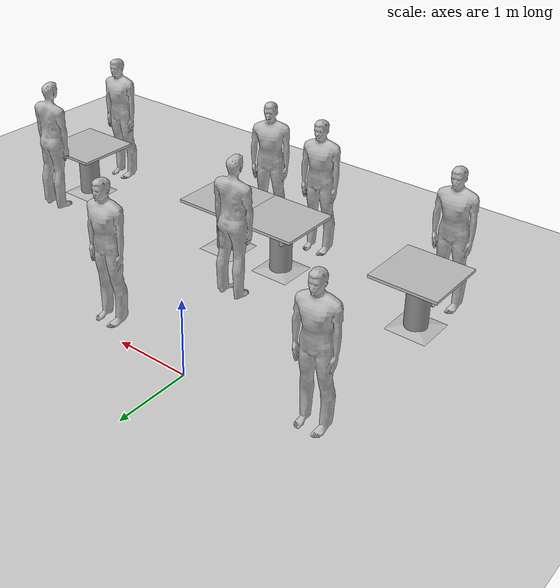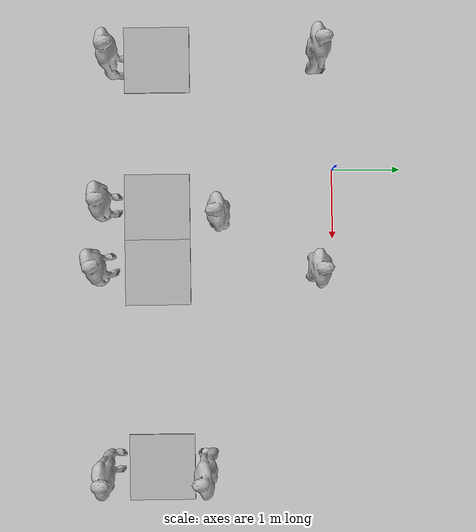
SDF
<sdf version="1.6">
 <world name="default">
  <model name="ground_plane">
   <static>1</static>
   <link name="link">
    <collision name="collision">
     <geometry><plane><normal>0 0 1</normal><size>100 100</size></plane></geometry>
     <surface><friction><ode><mu>100</mu><mu2>50</mu2></ode></friction></surface>
    </collision>
    <visual name="visual">
     <cast_shadows>0</cast_shadows>
     <geometry><plane><normal>0 0 1</normal><size>100 100</size></plane></geometry>
     <material>
      <script><uri>file://media/materials/scripts/gazebo.material</uri><name>Gazebo/Grey</name></script>
     </material>
    </visual>
   </link>
  </model>
  <model name="person_standing_1_clone">
   <link name="link">
    <inertial>
     <pose>0 -0.1 0.95 0 -0 0</pose>
     <mass>80</mass>
     <inertia><ixx>24.88</ixx><ixy>0</ixy><ixz>0</ixz><iyy>25.73</iyy><iyz>0</iyz><izz>2.48</izz></inertia>
    </inertial>
    <collision name="bottom">
     <pose>0 -0.1 0.01 0 -0 0</pose>
     <geometry><box><size>0.5 0.35 0.02</size></box></geometry>
    </collision>
    <collision name="person">
     <pose>0 0 0.02 0.04 -0 0</pose>
     <geometry><mesh><uri>model://person_standing/meshes/standing.dae</uri></mesh></geometry>
    </collision>
    <visual name="visual">
     <pose>0 0 0.02 0.04 -0 0</pose>
     <geometry><mesh><uri>model://person_standing/meshes/standing.dae</uri></mesh></geometry>
    </visual>
   </link>
   <pose>4.23043 -3.30562 0 1e-06 1e-06 3.12807</pose>
  </model>
  <model name="person_standing_1_clone_0">
   <link name="link">
    <inertial>
     <pose>0 -0.1 0.95 0 -0 0</pose>
     <mass>80</mass>
     <inertia><ixx>24.88</ixx><ixy>0</ixy><ixz>0</ixz><iyy>25.73</iyy><iyz>0</iyz><izz>2.48</izz></inertia>
    </inertial>
    <collision name="bottom">
     <pose>0 -0.1 0.01 0 -0 0</pose>
     <geometry><box><size>0.5 0.35 0.02</size></box></geometry>
    </collision>
    <collision name="person">
     <pose>0 0 0.02 0.04 -0 0</pose>
     <geometry><mesh><uri>model://person_standing/meshes/standing.dae</uri></mesh></geometry>
    </collision>
    <visual name="visual">
     <pose>0 0 0.02 0.04 -0 0</pose>
     <geometry><mesh><uri>model://person_standing/meshes/standing.dae</uri></mesh></geometry>
    </visual>
   </link>
   <pose>1.41682 -0.340179 1e-06 2e-06 -1e-06 3.0977</pose>
  </model>
  <model name="person_standing_1_clone_1">
   <link name="link">
    <inertial>
     <pose>0 -0.1 0.95 0 -0 0</pose>
     <mass>80</mass>
     <inertia><ixx>24.88</ixx><ixy>0</ixy><ixz>0</ixz><iyy>25.73</iyy><iyz>0</iyz><izz>2.48</izz></inertia>
    </inertial>
    <collision name="bottom">
     <pose>0 -0.1 0.01 0 -0 0</pose>
     <geometry><box><size>0.5 0.35 0.02</size></box></geometry>
    </collision>
    <collision name="person">
     <pose>0 0 0.02 0.04 -0 0</pose>
     <geometry><mesh><uri>model://person_standing/meshes/standing.dae</uri></mesh></geometry>
    </collision>
    <visual name="visual">
     <pose>0 0 0.02 0.04 -0 0</pose>
     <geometry><mesh><uri>model://person_standing/meshes/standing.dae</uri></mesh></geometry>
    </visual>
   </link>
   <pose>0.646415 -1.55215 0 0 -1e-06 0.003295</pose>
  </model>
  <model name="person_standing_1_clone_2">
   <link name="link">
    <inertial>
     <pose>0 -0.1 0.95 0 -0 0</pose>
     <mass>80</mass>
     <inertia><ixx>24.88</ixx><ixy>0</ixy><ixz>0</ixz><iyy>25.73</iyy><iyz>0</iyz><izz>2.48</izz></inertia>
    </inertial>
    <collision name="bottom">
     <pose>0 -0.1 0.01 0 -0 0</pose>
     <geometry><box><size>0.5 0.35 0.02</size></box></geometry>
    </collision>
    <collision name="person">
     <pose>0 0 0.02 0.04 -0 0</pose>
     <geometry><mesh><uri>model://person_standing/meshes/standing.dae</uri></mesh></geometry>
    </collision>
    <visual name="visual">
     <pose>0 0 0.02 0.04 -0 0</pose>
     <geometry><mesh><uri>model://person_standing/meshes/standing.dae</uri></mesh></geometry>
    </visual>
   </link>
   <pose>0.490841 -3.32315 0 1e-06 -1e-06 -3.0888</pose>
  </model>
  <model name="person_standing_1_clone_3">
   <link name="link">
    <inertial>
     <pose>0 -0.1 0.95 0 -0 0</pose>
     <mass>80</mass>
     <inertia><ixx>24.88</ixx><ixy>0</ixy><ixz>0</ixz><iyy>25.73</iyy><iyz>0</iyz><izz>2.48</izz></inertia>
    </inertial>
    <collision name="bottom">
     <pose>0 -0.1 0.01 0 -0 0</pose>
     <geometry><box><size>0.5 0.35 0.02</size></box></geometry>
    </collision>
    <collision name="person">
     <pose>0 0 0.02 0.04 -0 0</pose>
     <geometry><mesh><uri>model://person_standing/meshes/standing.dae</uri></mesh></geometry>
    </collision>
    <visual name="visual">
     <pose>0 0 0.02 0.04 -0 0</pose>
     <geometry><mesh><uri>model://person_standing/meshes/standing.dae</uri></mesh></geometry>
    </visual>
   </link>
   <pose>4.22588 -1.76471 0 -1e-06 -1e-06 0.001062</pose>
  </model>
  <model name="person_standing_1_clone_4">
   <link name="link">
    <inertial>
     <pose>0 -0.1 0.95 0 -0 0</pose>
     <mass>80</mass>
     <inertia><ixx>24.88</ixx><ixy>0</ixy><ixz>0</ixz><iyy>25.73</iyy><iyz>0</iyz><izz>2.48</izz></inertia>
    </inertial>
    <collision name="bottom">
     <pose>0 -0.1 0.01 0 -0 0</pose>
     <geometry><box><size>0.5 0.35 0.02</size></box></geometry>
    </collision>
    <collision name="person">
     <pose>0 0 0.02 0.04 -0 0</pose>
     <geometry><mesh><uri>model://person_standing/meshes/standing.dae</uri></mesh></geometry>
    </collision>
    <visual name="visual">
     <pose>0 0 0.02 0.04 -0 0</pose>
     <geometry><mesh><uri>model://person_standing/meshes/standing.dae</uri></mesh></geometry>
    </visual>
   </link>
   <pose>1.4013 -3.38995 0 0 1e-06 -2.84646</pose>
  </model>
  <model name="person_standing_1_clone_6">
   <link name="link">
    <inertial>
     <pose>0 -0.1 0.95 0 -0 0</pose>
     <mass>80</mass>
     <inertia><ixx>24.88</ixx><ixy>0</ixy><ixz>0</ixz><iyy>25.73</iyy><iyz>0</iyz><izz>2.48</izz></inertia>
    </inertial>
    <collision name="bottom">
     <pose>0 -0.1 0.01 0 -0 0</pose>
     <geometry><box><size>0.5 0.35 0.02</size></box></geometry>
    </collision>
    <collision name="person">
     <pose>0 0 0.02 0.04 -0 0</pose>
     <geometry><mesh><uri>model://person_standing/meshes/standing.dae</uri></mesh></geometry>
    </collision>
    <visual name="visual">
     <pose>0 0 0.02 0.04 -0 0</pose>
     <geometry><mesh><uri>model://person_standing/meshes/standing.dae</uri></mesh></geometry>
    </visual>
   </link>
   <pose>-1.58943 -0.320175 -1e-06 -1e-06 1e-06 -3.12397</pose>
  </model>
  <model name="person_standing_1_clone_7">
   <link name="link">
    <inertial>
     <pose>0 -0.1 0.95 0 -0 0</pose>
     <mass>80</mass>
     <inertia><ixx>24.88</ixx><ixy>0</ixy><ixz>0</ixz><iyy>25.73</iyy><iyz>0</iyz><izz>2.48</izz></inertia>
    </inertial>
    <collision name="bottom">
     <pose>0 -0.1 0.01 0 -0 0</pose>
     <geometry><box><size>0.5 0.35 0.02</size></box></geometry>
    </collision>
    <collision name="person">
     <pose>0 0 0.02 0.04 -0 0</pose>
     <geometry><mesh><uri>model://person_standing/meshes/standing.dae</uri></mesh></geometry>
    </collision>
    <visual name="visual">
     <pose>0 0 0.02 0.04 -0 0</pose>
     <geometry><mesh><uri>model://person_standing/meshes/standing.dae</uri></mesh></geometry>
    </visual>
   </link>
   <pose>-1.54717 -3.20367 -1e-06 -1e-06 1e-06 3.12525</pose>
  </model>
  <model name="cafe_table_clone_4_clone_2">
   <link name="link">
    <visual name="visual">
     <geometry><mesh><uri>model://cafe_table/meshes/cafe_table.dae</uri></mesh></geometry>
     <material><shader type="pixel"/><emissive>0 0 0 1</emissive></material>
    </visual>
    <collision name="surface">
     <pose>0 0 0.755 0 -0 0</pose>
     <geometry><box><size>0.913 0.913 0.04</size></box></geometry>
     <surface>
      <friction>
       <ode><mu>1</mu><mu2>1</mu2><fdir1>0 0 0</fdir1><slip1>0</slip1><slip2>0</slip2></ode>
       <torsional>
        <coefficient>1</coefficient>
        <patch_radius>0</patch_radius>
        <surface_radius>0</surface_radius>
        <use_patch_radius>1</use_patch_radius>
        <ode><slip>0</slip></ode>
       </torsional>
      </friction>
      <bounce><restitution_coefficient>0</restitution_coefficient><threshold>1e+06</threshold></bounce>
      <contact>
       <collide_without_contact>0</collide_without_contact>
       <collide_without_contact_bitmask>1</collide_without_contact_bitmask>
       <collide_bitmask>1</collide_bitmask>
       <ode>
        <soft_cfm>0</soft_cfm>
        <soft_erp>0.2</soft_erp>
        <kp>1e+13</kp>
        <kd>1</kd>
        <max_vel>0.01</max_vel>
        <min_depth>0</min_depth>
       </ode>
       <bullet>
        <split_impulse>1</split_impulse>
        <split_impulse_penetration_threshold>-0.01</split_impulse_penetration_threshold>
        <soft_cfm>0</soft_cfm>
        <soft_erp>0.2</soft_erp>
        <kp>1e+13</kp>
        <kd>1</kd>
       </bullet>
      </contact>
     </surface>
    </collision>
    <collision name="column">
     <pose>0 0 0.37 0 -0 0</pose>
     <geometry><box><size>0.042 0.042 0.74</size></box></geometry>
     <surface>
      <friction>
       <ode><mu>1</mu><mu2>1</mu2><fdir1>0 0 0</fdir1><slip1>0</slip1><slip2>0</slip2></ode>
       <torsional>
        <coefficient>1</coefficient>
        <patch_radius>0</patch_radius>
        <surface_radius>0</surface_radius>
        <use_patch_radius>1</use_patch_radius>
        <ode><slip>0</slip></ode>
       </torsional>
      </friction>
      <bounce><restitution_coefficient>0</restitution_coefficient><threshold>1e+06</threshold></bounce>
      <contact>
       <collide_without_contact>0</collide_without_contact>
       <collide_without_contact_bitmask>1</collide_without_contact_bitmask>
       <collide_bitmask>1</collide_bitmask>
       <ode>
        <soft_cfm>0</soft_cfm>
        <soft_erp>0.2</soft_erp>
        <kp>1e+13</kp>
        <kd>1</kd>
        <max_vel>0.01</max_vel>
        <min_depth>0</min_depth>
       </ode>
       <bullet>
        <split_impulse>1</split_impulse>
        <split_impulse_penetration_threshold>-0.01</split_impulse_penetration_threshold>
        <soft_cfm>0</soft_cfm>
        <soft_erp>0.2</soft_erp>
        <kp>1e+13</kp>
        <kd>1</kd>
       </bullet>
      </contact>
     </surface>
    </collision>
    <collision name="base">
     <pose>0 0 0.02 0 -0 0</pose>
     <geometry><box><size>0.56 0.56 0.04</size></box></geometry>
     <surface>
      <friction>
       <ode><mu>1</mu><mu2>1</mu2><fdir1>0 0 0</fdir1><slip1>0</slip1><slip2>0</slip2></ode>
       <torsional>
        <coefficient>1</coefficient>
        <patch_radius>0</patch_radius>
        <surface_radius>0</surface_radius>
        <use_patch_radius>1</use_patch_radius>
        <ode><slip>0</slip></ode>
       </torsional>
      </friction>
      <bounce><restitution_coefficient>0</restitution_coefficient><threshold>1e+06</threshold></bounce>
      <contact>
       <collide_without_contact>0</collide_without_contact>
       <collide_without_contact_bitmask>1</collide_without_contact_bitmask>
       <collide_bitmask>1</collide_bitmask>
       <ode>
        <soft_cfm>0</soft_cfm>
        <soft_erp>0.2</soft_erp>
        <kp>1e+13</kp>
        <kd>1</kd>
        <max_vel>0.01</max_vel>
        <min_depth>0</min_depth>
       </ode>
       <bullet>
        <split_impulse>1</split_impulse>
        <split_impulse_penetration_threshold>-0.01</split_impulse_penetration_threshold>
        <soft_cfm>0</soft_cfm>
        <soft_erp>0.2</soft_erp>
        <kp>1e+13</kp>
        <kd>1</kd>
       </bullet>
      </contact>
     </surface>
    </collision>
   </link>
   <link name="link_1">
    <pose>0.006591 0.003726 0.34636 0 -0 0</pose>
    <inertial>
     <mass>0.0583743</mass>
     <inertia>
      <ixx>0.00238915</ixx>
      <ixy>0</ixy>
      <ixz>0</ixz>
      <iyy>0.00238915</iyy>
      <iyz>0</iyz>
      <izz>0.000654099</izz>
     </inertia>
    </inertial>
    <visual name="visual">
     <geometry><cylinder><radius>0.149701</radius><length>0.65108</length></cylinder></geometry>
     <material>
      <lighting>1</lighting>
      <script><uri>file://media/materials/scripts/gazebo.material</uri><name>Gazebo/Grey</name></script>
      <shader type="pixel"/>
      <ambient>0.3 0.3 0.3 1</ambient>
      <diffuse>0.7 0.7 0.7 1</diffuse>
      <specular>0.01 0.01 0.01 1</specular>
      <emissive>0 0 0 1</emissive>
     </material>
    </visual>
    <collision name="collision">
     <geometry><cylinder><radius>0.149701</radius><length>0.65108</length></cylinder></geometry>
     <surface>
      <friction>
       <ode><mu>1</mu><mu2>1</mu2><fdir1>0 0 0</fdir1><slip1>0</slip1><slip2>0</slip2></ode>
       <torsional>
        <coefficient>1</coefficient>
        <patch_radius>0</patch_radius>
        <surface_radius>0</surface_radius>
        <use_patch_radius>1</use_patch_radius>
        <ode><slip>0</slip></ode>
       </torsional>
      </friction>
      <bounce><restitution_coefficient>0</restitution_coefficient><threshold>1e+06</threshold></bounce>
      <contact>
       <collide_without_contact>0</collide_without_contact>
       <collide_without_contact_bitmask>1</collide_without_contact_bitmask>
       <collide_bitmask>1</collide_bitmask>
       <ode>
        <soft_cfm>0</soft_cfm>
        <soft_erp>0.2</soft_erp>
        <kp>1e+13</kp>
        <kd>1</kd>
        <max_vel>0.01</max_vel>
        <min_depth>0</min_depth>
       </ode>
       <bullet>
        <split_impulse>1</split_impulse>
        <split_impulse_penetration_threshold>-0.01</split_impulse_penetration_threshold>
        <soft_cfm>0</soft_cfm>
        <soft_erp>0.2</soft_erp>
        <kp>1e+13</kp>
        <kd>1</kd>
       </bullet>
      </contact>
     </surface>
    </collision>
   </link>
   <joint name="link_JOINT_0" type="revolute">
    <parent>link</parent>
    <child>link_1</child>
    <axis>
     <xyz>1 0 0</xyz>
     <use_parent_model_frame>0</use_parent_model_frame>
     <limit>
      <lower>-1.79769e+308</lower>
      <upper>1.79769e+308</upper>
      <effort>-1</effort>
      <velocity>-1</velocity>
     </limit>
     <dynamics>
      <spring_reference>0</spring_reference>
      <spring_stiffness>0</spring_stiffness>
      <damping>0</damping>
     </dynamics>
    </axis>
    <physics>
     <ode><limit><cfm>0</cfm><erp>0.2</erp></limit><suspension><cfm>0</cfm><erp>0.2</erp></suspension></ode>
    </physics>
   </joint>
   <static>1</static>
   <pose>4.18421 -2.46944 0 0 -0 0</pose>
  </model>
  <model name="cafe_table_clone_4_clone_3">
   <link name="link">
    <visual name="visual">
     <geometry><mesh><uri>model://cafe_table/meshes/cafe_table.dae</uri></mesh></geometry>
     <material><shader type="pixel"/><emissive>0 0 0 1</emissive></material>
    </visual>
    <collision name="surface">
     <pose>0 0 0.755 0 -0 0</pose>
     <geometry><box><size>0.913 0.913 0.04</size></box></geometry>
     <surface>
      <friction>
       <ode><mu>1</mu><mu2>1</mu2><fdir1>0 0 0</fdir1><slip1>0</slip1><slip2>0</slip2></ode>
       <torsional>
        <coefficient>1</coefficient>
        <patch_radius>0</patch_radius>
        <surface_radius>0</surface_radius>
        <use_patch_radius>1</use_patch_radius>
        <ode><slip>0</slip></ode>
       </torsional>
      </friction>
      <bounce><restitution_coefficient>0</restitution_coefficient><threshold>1e+06</threshold></bounce>
      <contact>
       <collide_without_contact>0</collide_without_contact>
       <collide_without_contact_bitmask>1</collide_without_contact_bitmask>
       <collide_bitmask>1</collide_bitmask>
       <ode>
        <soft_cfm>0</soft_cfm>
        <soft_erp>0.2</soft_erp>
        <kp>1e+13</kp>
        <kd>1</kd>
        <max_vel>0.01</max_vel>
        <min_depth>0</min_depth>
       </ode>
       <bullet>
        <split_impulse>1</split_impulse>
        <split_impulse_penetration_threshold>-0.01</split_impulse_penetration_threshold>
        <soft_cfm>0</soft_cfm>
        <soft_erp>0.2</soft_erp>
        <kp>1e+13</kp>
        <kd>1</kd>
       </bullet>
      </contact>
     </surface>
    </collision>
    <collision name="column">
     <pose>0 0 0.37 0 -0 0</pose>
     <geometry><box><size>0.042 0.042 0.74</size></box></geometry>
     <surface>
      <friction>
       <ode><mu>1</mu><mu2>1</mu2><fdir1>0 0 0</fdir1><slip1>0</slip1><slip2>0</slip2></ode>
       <torsional>
        <coefficient>1</coefficient>
        <patch_radius>0</patch_radius>
        <surface_radius>0</surface_radius>
        <use_patch_radius>1</use_patch_radius>
        <ode><slip>0</slip></ode>
       </torsional>
      </friction>
      <bounce><restitution_coefficient>0</restitution_coefficient><threshold>1e+06</threshold></bounce>
      <contact>
       <collide_without_contact>0</collide_without_contact>
       <collide_without_contact_bitmask>1</collide_without_contact_bitmask>
       <collide_bitmask>1</collide_bitmask>
       <ode>
        <soft_cfm>0</soft_cfm>
        <soft_erp>0.2</soft_erp>
        <kp>1e+13</kp>
        <kd>1</kd>
        <max_vel>0.01</max_vel>
        <min_depth>0</min_depth>
       </ode>
       <bullet>
        <split_impulse>1</split_impulse>
        <split_impulse_penetration_threshold>-0.01</split_impulse_penetration_threshold>
        <soft_cfm>0</soft_cfm>
        <soft_erp>0.2</soft_erp>
        <kp>1e+13</kp>
        <kd>1</kd>
       </bullet>
      </contact>
     </surface>
    </collision>
    <collision name="base">
     <pose>0 0 0.02 0 -0 0</pose>
     <geometry><box><size>0.56 0.56 0.04</size></box></geometry>
     <surface>
      <friction>
       <ode><mu>1</mu><mu2>1</mu2><fdir1>0 0 0</fdir1><slip1>0</slip1><slip2>0</slip2></ode>
       <torsional>
        <coefficient>1</coefficient>
        <patch_radius>0</patch_radius>
        <surface_radius>0</surface_radius>
        <use_patch_radius>1</use_patch_radius>
        <ode><slip>0</slip></ode>
       </torsional>
      </friction>
      <bounce><restitution_coefficient>0</restitution_coefficient><threshold>1e+06</threshold></bounce>
      <contact>
       <collide_without_contact>0</collide_without_contact>
       <collide_without_contact_bitmask>1</collide_without_contact_bitmask>
       <collide_bitmask>1</collide_bitmask>
       <ode>
        <soft_cfm>0</soft_cfm>
        <soft_erp>0.2</soft_erp>
        <kp>1e+13</kp>
        <kd>1</kd>
        <max_vel>0.01</max_vel>
        <min_depth>0</min_depth>
       </ode>
       <bullet>
        <split_impulse>1</split_impulse>
        <split_impulse_penetration_threshold>-0.01</split_impulse_penetration_threshold>
        <soft_cfm>0</soft_cfm>
        <soft_erp>0.2</soft_erp>
        <kp>1e+13</kp>
        <kd>1</kd>
       </bullet>
      </contact>
     </surface>
    </collision>
   </link>
   <link name="link_1">
    <pose>0.006591 0.003726 0.34636 0 -0 0</pose>
    <inertial>
     <mass>0.0583743</mass>
     <inertia>
      <ixx>0.00238915</ixx>
      <ixy>0</ixy>
      <ixz>0</ixz>
      <iyy>0.00238915</iyy>
      <iyz>0</iyz>
      <izz>0.000654099</izz>
     </inertia>
    </inertial>
    <visual name="visual">
     <geometry><cylinder><radius>0.149701</radius><length>0.65108</length></cylinder></geometry>
     <material>
      <lighting>1</lighting>
      <script><uri>file://media/materials/scripts/gazebo.material</uri><name>Gazebo/Grey</name></script>
      <shader type="pixel"/>
      <ambient>0.3 0.3 0.3 1</ambient>
      <diffuse>0.7 0.7 0.7 1</diffuse>
      <specular>0.01 0.01 0.01 1</specular>
      <emissive>0 0 0 1</emissive>
     </material>
    </visual>
    <collision name="collision">
     <geometry><cylinder><radius>0.149701</radius><length>0.65108</length></cylinder></geometry>
     <surface>
      <friction>
       <ode><mu>1</mu><mu2>1</mu2><fdir1>0 0 0</fdir1><slip1>0</slip1><slip2>0</slip2></ode>
       <torsional>
        <coefficient>1</coefficient>
        <patch_radius>0</patch_radius>
        <surface_radius>0</surface_radius>
        <use_patch_radius>1</use_patch_radius>
        <ode><slip>0</slip></ode>
       </torsional>
      </friction>
      <bounce><restitution_coefficient>0</restitution_coefficient><threshold>1e+06</threshold></bounce>
      <contact>
       <collide_without_contact>0</collide_without_contact>
       <collide_without_contact_bitmask>1</collide_without_contact_bitmask>
       <collide_bitmask>1</collide_bitmask>
       <ode>
        <soft_cfm>0</soft_cfm>
        <soft_erp>0.2</soft_erp>
        <kp>1e+13</kp>
        <kd>1</kd>
        <max_vel>0.01</max_vel>
        <min_depth>0</min_depth>
       </ode>
       <bullet>
        <split_impulse>1</split_impulse>
        <split_impulse_penetration_threshold>-0.01</split_impulse_penetration_threshold>
        <soft_cfm>0</soft_cfm>
        <soft_erp>0.2</soft_erp>
        <kp>1e+13</kp>
        <kd>1</kd>
       </bullet>
      </contact>
     </surface>
    </collision>
   </link>
   <joint name="link_JOINT_0" type="revolute">
    <parent>link</parent>
    <child>link_1</child>
    <axis>
     <xyz>1 0 0</xyz>
     <use_parent_model_frame>0</use_parent_model_frame>
     <limit>
      <lower>-1.79769e+308</lower>
      <upper>1.79769e+308</upper>
      <effort>-1</effort>
      <velocity>-1</velocity>
     </limit>
     <dynamics>
      <spring_reference>0</spring_reference>
      <spring_stiffness>0</spring_stiffness>
      <damping>0</damping>
     </dynamics>
    </axis>
    <physics>
     <ode><limit><cfm>0</cfm><erp>0.2</erp></limit><suspension><cfm>0</cfm><erp>0.2</erp></suspension></ode>
    </physics>
   </joint>
   <static>1</static>
   <pose>1.46077 -2.50343 0 0 -0 0</pose>
  </model>
  <model name="cafe_table_clone_4_clone_4">
   <link name="link">
    <visual name="visual">
     <geometry><mesh><uri>model://cafe_table/meshes/cafe_table.dae</uri></mesh></geometry>
     <material><shader type="pixel"/><emissive>0 0 0 1</emissive></material>
    </visual>
    <collision name="surface">
     <pose>0 0 0.755 0 -0 0</pose>
     <geometry><box><size>0.913 0.913 0.04</size></box></geometry>
     <surface>
      <friction>
       <ode><mu>1</mu><mu2>1</mu2><fdir1>0 0 0</fdir1><slip1>0</slip1><slip2>0</slip2></ode>
       <torsional>
        <coefficient>1</coefficient>
        <patch_radius>0</patch_radius>
        <surface_radius>0</surface_radius>
        <use_patch_radius>1</use_patch_radius>
        <ode><slip>0</slip></ode>
       </torsional>
      </friction>
      <bounce><restitution_coefficient>0</restitution_coefficient><threshold>1e+06</threshold></bounce>
      <contact>
       <collide_without_contact>0</collide_without_contact>
       <collide_without_contact_bitmask>1</collide_without_contact_bitmask>
       <collide_bitmask>1</collide_bitmask>
       <ode>
        <soft_cfm>0</soft_cfm>
        <soft_erp>0.2</soft_erp>
        <kp>1e+13</kp>
        <kd>1</kd>
        <max_vel>0.01</max_vel>
        <min_depth>0</min_depth>
       </ode>
       <bullet>
        <split_impulse>1</split_impulse>
        <split_impulse_penetration_threshold>-0.01</split_impulse_penetration_threshold>
        <soft_cfm>0</soft_cfm>
        <soft_erp>0.2</soft_erp>
        <kp>1e+13</kp>
        <kd>1</kd>
       </bullet>
      </contact>
     </surface>
    </collision>
    <collision name="column">
     <pose>0 0 0.37 0 -0 0</pose>
     <geometry><box><size>0.042 0.042 0.74</size></box></geometry>
     <surface>
      <friction>
       <ode><mu>1</mu><mu2>1</mu2><fdir1>0 0 0</fdir1><slip1>0</slip1><slip2>0</slip2></ode>
       <torsional>
        <coefficient>1</coefficient>
        <patch_radius>0</patch_radius>
        <surface_radius>0</surface_radius>
        <use_patch_radius>1</use_patch_radius>
        <ode><slip>0</slip></ode>
       </torsional>
      </friction>
      <bounce><restitution_coefficient>0</restitution_coefficient><threshold>1e+06</threshold></bounce>
      <contact>
       <collide_without_contact>0</collide_without_contact>
       <collide_without_contact_bitmask>1</collide_without_contact_bitmask>
       <collide_bitmask>1</collide_bitmask>
       <ode>
        <soft_cfm>0</soft_cfm>
        <soft_erp>0.2</soft_erp>
        <kp>1e+13</kp>
        <kd>1</kd>
        <max_vel>0.01</max_vel>
        <min_depth>0</min_depth>
       </ode>
       <bullet>
        <split_impulse>1</split_impulse>
        <split_impulse_penetration_threshold>-0.01</split_impulse_penetration_threshold>
        <soft_cfm>0</soft_cfm>
        <soft_erp>0.2</soft_erp>
        <kp>1e+13</kp>
        <kd>1</kd>
       </bullet>
      </contact>
     </surface>
    </collision>
    <collision name="base">
     <pose>0 0 0.02 0 -0 0</pose>
     <geometry><box><size>0.56 0.56 0.04</size></box></geometry>
     <surface>
      <friction>
       <ode><mu>1</mu><mu2>1</mu2><fdir1>0 0 0</fdir1><slip1>0</slip1><slip2>0</slip2></ode>
       <torsional>
        <coefficient>1</coefficient>
        <patch_radius>0</patch_radius>
        <surface_radius>0</surface_radius>
        <use_patch_radius>1</use_patch_radius>
        <ode><slip>0</slip></ode>
       </torsional>
      </friction>
      <bounce><restitution_coefficient>0</restitution_coefficient><threshold>1e+06</threshold></bounce>
      <contact>
       <collide_without_contact>0</collide_without_contact>
       <collide_without_contact_bitmask>1</collide_without_contact_bitmask>
       <collide_bitmask>1</collide_bitmask>
       <ode>
        <soft_cfm>0</soft_cfm>
        <soft_erp>0.2</soft_erp>
        <kp>1e+13</kp>
        <kd>1</kd>
        <max_vel>0.01</max_vel>
        <min_depth>0</min_depth>
       </ode>
       <bullet>
        <split_impulse>1</split_impulse>
        <split_impulse_penetration_threshold>-0.01</split_impulse_penetration_threshold>
        <soft_cfm>0</soft_cfm>
        <soft_erp>0.2</soft_erp>
        <kp>1e+13</kp>
        <kd>1</kd>
       </bullet>
      </contact>
     </surface>
    </collision>
   </link>
   <link name="link_1">
    <pose>0.006591 0.003726 0.34636 0 -0 0</pose>
    <inertial>
     <mass>0.0583743</mass>
     <inertia>
      <ixx>0.00238915</ixx>
      <ixy>0</ixy>
      <ixz>0</ixz>
      <iyy>0.00238915</iyy>
      <iyz>0</iyz>
      <izz>0.000654099</izz>
     </inertia>
    </inertial>
    <visual name="visual">
     <geometry><cylinder><radius>0.149701</radius><length>0.65108</length></cylinder></geometry>
     <material>
      <lighting>1</lighting>
      <script><uri>file://media/materials/scripts/gazebo.material</uri><name>Gazebo/Grey</name></script>
      <shader type="pixel"/>
      <ambient>0.3 0.3 0.3 1</ambient>
      <diffuse>0.7 0.7 0.7 1</diffuse>
      <specular>0.01 0.01 0.01 1</specular>
      <emissive>0 0 0 1</emissive>
     </material>
    </visual>
    <collision name="collision">
     <geometry><cylinder><radius>0.149701</radius><length>0.65108</length></cylinder></geometry>
     <surface>
      <friction>
       <ode><mu>1</mu><mu2>1</mu2><fdir1>0 0 0</fdir1><slip1>0</slip1><slip2>0</slip2></ode>
       <torsional>
        <coefficient>1</coefficient>
        <patch_radius>0</patch_radius>
        <surface_radius>0</surface_radius>
        <use_patch_radius>1</use_patch_radius>
        <ode><slip>0</slip></ode>
       </torsional>
      </friction>
      <bounce><restitution_coefficient>0</restitution_coefficient><threshold>1e+06</threshold></bounce>
      <contact>
       <collide_without_contact>0</collide_without_contact>
       <collide_without_contact_bitmask>1</collide_without_contact_bitmask>
       <collide_bitmask>1</collide_bitmask>
       <ode>
        <soft_cfm>0</soft_cfm>
        <soft_erp>0.2</soft_erp>
        <kp>1e+13</kp>
        <kd>1</kd>
        <max_vel>0.01</max_vel>
        <min_depth>0</min_depth>
       </ode>
       <bullet>
        <split_impulse>1</split_impulse>
        <split_impulse_penetration_threshold>-0.01</split_impulse_penetration_threshold>
        <soft_cfm>0</soft_cfm>
        <soft_erp>0.2</soft_erp>
        <kp>1e+13</kp>
        <kd>1</kd>
       </bullet>
      </contact>
     </surface>
    </collision>
   </link>
   <joint name="link_JOINT_0" type="revolute">
    <parent>link</parent>
    <child>link_1</child>
    <axis>
     <xyz>1 0 0</xyz>
     <use_parent_model_frame>0</use_parent_model_frame>
     <limit>
      <lower>-1.79769e+308</lower>
      <upper>1.79769e+308</upper>
      <effort>-1</effort>
      <velocity>-1</velocity>
     </limit>
     <dynamics>
      <spring_reference>0</spring_reference>
      <spring_stiffness>0</spring_stiffness>
      <damping>0</damping>
     </dynamics>
    </axis>
    <physics>
     <ode><limit><cfm>0</cfm><erp>0.2</erp></limit><suspension><cfm>0</cfm><erp>0.2</erp></suspension></ode>
    </physics>
   </joint>
   <static>1</static>
   <pose>0.546805 -2.50332 0 0 -0 0</pose>
  </model>
  <model name="cafe_table_clone_4_clone_5">
   <link name="link">
    <visual name="visual">
     <geometry><mesh><uri>model://cafe_table/meshes/cafe_table.dae</uri></mesh></geometry>
     <material><shader type="pixel"/><emissive>0 0 0 1</emissive></material>
    </visual>
    <collision name="surface">
     <pose>0 0 0.755 0 -0 0</pose>
     <geometry><box><size>0.913 0.913 0.04</size></box></geometry>
     <surface>
      <friction>
       <ode><mu>1</mu><mu2>1</mu2><fdir1>0 0 0</fdir1><slip1>0</slip1><slip2>0</slip2></ode>
       <torsional>
        <coefficient>1</coefficient>
        <patch_radius>0</patch_radius>
        <surface_radius>0</surface_radius>
        <use_patch_radius>1</use_patch_radius>
        <ode><slip>0</slip></ode>
       </torsional>
      </friction>
      <bounce><restitution_coefficient>0</restitution_coefficient><threshold>1e+06</threshold></bounce>
      <contact>
       <collide_without_contact>0</collide_without_contact>
       <collide_without_contact_bitmask>1</collide_without_contact_bitmask>
       <collide_bitmask>1</collide_bitmask>
       <ode>
        <soft_cfm>0</soft_cfm>
        <soft_erp>0.2</soft_erp>
        <kp>1e+13</kp>
        <kd>1</kd>
        <max_vel>0.01</max_vel>
        <min_depth>0</min_depth>
       </ode>
       <bullet>
        <split_impulse>1</split_impulse>
        <split_impulse_penetration_threshold>-0.01</split_impulse_penetration_threshold>
        <soft_cfm>0</soft_cfm>
        <soft_erp>0.2</soft_erp>
        <kp>1e+13</kp>
        <kd>1</kd>
       </bullet>
      </contact>
     </surface>
    </collision>
    <collision name="column">
     <pose>0 0 0.37 0 -0 0</pose>
     <geometry><box><size>0.042 0.042 0.74</size></box></geometry>
     <surface>
      <friction>
       <ode><mu>1</mu><mu2>1</mu2><fdir1>0 0 0</fdir1><slip1>0</slip1><slip2>0</slip2></ode>
       <torsional>
        <coefficient>1</coefficient>
        <patch_radius>0</patch_radius>
        <surface_radius>0</surface_radius>
        <use_patch_radius>1</use_patch_radius>
        <ode><slip>0</slip></ode>
       </torsional>
      </friction>
      <bounce><restitution_coefficient>0</restitution_coefficient><threshold>1e+06</threshold></bounce>
      <contact>
       <collide_without_contact>0</collide_without_contact>
       <collide_without_contact_bitmask>1</collide_without_contact_bitmask>
       <collide_bitmask>1</collide_bitmask>
       <ode>
        <soft_cfm>0</soft_cfm>
        <soft_erp>0.2</soft_erp>
        <kp>1e+13</kp>
        <kd>1</kd>
        <max_vel>0.01</max_vel>
        <min_depth>0</min_depth>
       </ode>
       <bullet>
        <split_impulse>1</split_impulse>
        <split_impulse_penetration_threshold>-0.01</split_impulse_penetration_threshold>
        <soft_cfm>0</soft_cfm>
        <soft_erp>0.2</soft_erp>
        <kp>1e+13</kp>
        <kd>1</kd>
       </bullet>
      </contact>
     </surface>
    </collision>
    <collision name="base">
     <pose>0 0 0.02 0 -0 0</pose>
     <geometry><box><size>0.56 0.56 0.04</size></box></geometry>
     <surface>
      <friction>
       <ode><mu>1</mu><mu2>1</mu2><fdir1>0 0 0</fdir1><slip1>0</slip1><slip2>0</slip2></ode>
       <torsional>
        <coefficient>1</coefficient>
        <patch_radius>0</patch_radius>
        <surface_radius>0</surface_radius>
        <use_patch_radius>1</use_patch_radius>
        <ode><slip>0</slip></ode>
       </torsional>
      </friction>
      <bounce><restitution_coefficient>0</restitution_coefficient><threshold>1e+06</threshold></bounce>
      <contact>
       <collide_without_contact>0</collide_without_contact>
       <collide_without_contact_bitmask>1</collide_without_contact_bitmask>
       <collide_bitmask>1</collide_bitmask>
       <ode>
        <soft_cfm>0</soft_cfm>
        <soft_erp>0.2</soft_erp>
        <kp>1e+13</kp>
        <kd>1</kd>
        <max_vel>0.01</max_vel>
        <min_depth>0</min_depth>
       </ode>
       <bullet>
        <split_impulse>1</split_impulse>
        <split_impulse_penetration_threshold>-0.01</split_impulse_penetration_threshold>
        <soft_cfm>0</soft_cfm>
        <soft_erp>0.2</soft_erp>
        <kp>1e+13</kp>
        <kd>1</kd>
       </bullet>
      </contact>
     </surface>
    </collision>
   </link>
   <link name="link_1">
    <pose>0.006591 0.003726 0.34636 0 -0 0</pose>
    <inertial>
     <mass>0.0583743</mass>
     <inertia>
      <ixx>0.00238915</ixx>
      <ixy>0</ixy>
      <ixz>0</ixz>
      <iyy>0.00238915</iyy>
      <iyz>0</iyz>
      <izz>0.000654099</izz>
     </inertia>
    </inertial>
    <visual name="visual">
     <geometry><cylinder><radius>0.149701</radius><length>0.65108</length></cylinder></geometry>
     <material>
      <lighting>1</lighting>
      <script><uri>file://media/materials/scripts/gazebo.material</uri><name>Gazebo/Grey</name></script>
      <shader type="pixel"/>
      <ambient>0.3 0.3 0.3 1</ambient>
      <diffuse>0.7 0.7 0.7 1</diffuse>
      <specular>0.01 0.01 0.01 1</specular>
      <emissive>0 0 0 1</emissive>
     </material>
    </visual>
    <collision name="collision">
     <geometry><cylinder><radius>0.149701</radius><length>0.65108</length></cylinder></geometry>
     <surface>
      <friction>
       <ode><mu>1</mu><mu2>1</mu2><fdir1>0 0 0</fdir1><slip1>0</slip1><slip2>0</slip2></ode>
       <torsional>
        <coefficient>1</coefficient>
        <patch_radius>0</patch_radius>
        <surface_radius>0</surface_radius>
        <use_patch_radius>1</use_patch_radius>
        <ode><slip>0</slip></ode>
       </torsional>
      </friction>
      <bounce><restitution_coefficient>0</restitution_coefficient><threshold>1e+06</threshold></bounce>
      <contact>
       <collide_without_contact>0</collide_without_contact>
       <collide_without_contact_bitmask>1</collide_without_contact_bitmask>
       <collide_bitmask>1</collide_bitmask>
       <ode>
        <soft_cfm>0</soft_cfm>
        <soft_erp>0.2</soft_erp>
        <kp>1e+13</kp>
        <kd>1</kd>
        <max_vel>0.01</max_vel>
        <min_depth>0</min_depth>
       </ode>
       <bullet>
        <split_impulse>1</split_impulse>
        <split_impulse_penetration_threshold>-0.01</split_impulse_penetration_threshold>
        <soft_cfm>0</soft_cfm>
        <soft_erp>0.2</soft_erp>
        <kp>1e+13</kp>
        <kd>1</kd>
       </bullet>
      </contact>
     </surface>
    </collision>
   </link>
   <joint name="link_JOINT_0" type="revolute">
    <parent>link</parent>
    <child>link_1</child>
    <axis>
     <xyz>1 0 0</xyz>
     <use_parent_model_frame>0</use_parent_model_frame>
     <limit>
      <lower>-1.79769e+308</lower>
      <upper>1.79769e+308</upper>
      <effort>-1</effort>
      <velocity>-1</velocity>
     </limit>
     <dynamics>
      <spring_reference>0</spring_reference>
      <spring_stiffness>0</spring_stiffness>
      <damping>0</damping>
     </dynamics>
    </axis>
    <physics>
     <ode><limit><cfm>0</cfm><erp>0.2</erp></limit><suspension><cfm>0</cfm><erp>0.2</erp></suspension></ode>
    </physics>
   </joint>
   <static>1</static>
   <pose>-1.5082 -2.48675 0 0 -0 0</pose>
  </model>
  <model name="coke_can_clone">
   <link name="link">
    <inertial>
     <pose>-0.01 -0.012 0.15 0 -0 0</pose>
     <mass>0.39</mass>
     <inertia><ixx>0.00058</ixx><ixy>0</ixy><ixz>0</ixz><iyy>0.00058</iyy><iyz>0</iyz><izz>0.00019</izz></inertia>
    </inertial>
    <collision name="collision">
     <pose>0 0 -0.46 0 -0 0</pose>
     <geometry><mesh><uri>model://coke_can/meshes/coke_can.dae</uri></mesh></geometry>
     <surface>
      <friction><ode><mu>1</mu><mu2>1</mu2></ode></friction>
      <contact><ode><kp>1e+07</kp><kd>1</kd><min_depth>0.001</min_depth><max_vel>0.1</max_vel></ode></contact>
     </surface>
    </collision>
    <visual name="visual">
     <pose>0 0 -0.46 0 -0 0</pose>
     <geometry><mesh><uri>model://coke_can/meshes/coke_can.dae</uri></mesh></geometry>
    </visual>
   </link>
   <pose>1.44009 -2.34601 0.770501 -0.01307 -0.01721 0.026508</pose>
  </model>
  <model name="coke_can_clone_0">
   <link name="link">
    <inertial>
     <pose>-0.01 -0.012 0.15 0 -0 0</pose>
     <mass>0.39</mass>
     <inertia><ixx>0.00058</ixx><ixy>0</ixy><ixz>0</ixz><iyy>0.00058</iyy><iyz>0</iyz><izz>0.00019</izz></inertia>
    </inertial>
    <collision name="collision">
     <pose>0 0 -0.46 0 -0 0</pose>
     <geometry><mesh><uri>model://coke_can/meshes/coke_can.dae</uri></mesh></geometry>
     <surface>
      <friction><ode><mu>1</mu><mu2>1</mu2></ode></friction>
      <contact><ode><kp>1e+07</kp><kd>1</kd><min_depth>0.001</min_depth><max_vel>0.1</max_vel></ode></contact>
     </surface>
    </collision>
    <visual name="visual">
     <pose>0 0 -0.46 0 -0 0</pose>
     <geometry><mesh><uri>model://coke_can/meshes/coke_can.dae</uri></mesh></geometry>
    </visual>
   </link>
   <pose>0.410222 -2.31078 0.770501 -0.01307 -0.01721 0.026452</pose>
  </model>
  <model name="coke_can_clone_1">
   <link name="link">
    <inertial>
     <pose>-0.01 -0.012 0.15 0 -0 0</pose>
     <mass>0.39</mass>
     <inertia><ixx>0.00058</ixx><ixy>0</ixy><ixz>0</ixz><iyy>0.00058</iyy><iyz>0</iyz><izz>0.00019</izz></inertia>
    </inertial>
    <collision name="collision">
     <pose>0 0 -0.46 0 -0 0</pose>
     <geometry><mesh><uri>model://coke_can/meshes/coke_can.dae</uri></mesh></geometry>
     <surface>
      <friction><ode><mu>1</mu><mu2>1</mu2></ode></friction>
      <contact><ode><kp>1e+07</kp><kd>1</kd><min_depth>0.001</min_depth><max_vel>0.1</max_vel></ode></contact>
     </surface>
    </collision>
    <visual name="visual">
     <pose>0 0 -0.46 0 -0 0</pose>
     <geometry><mesh><uri>model://coke_can/meshes/coke_can.dae</uri></mesh></geometry>
    </visual>
   </link>
   <pose>1.06734 -2.78199 0.770501 -0.01307 -0.01721 0.02637</pose>
  </model>
  <model name="coke_can_clone_3">
   <link name="link">
    <inertial>
     <pose>-0.01 -0.012 0.15 0 -0 0</pose>
     <mass>0.39</mass>
     <inertia><ixx>0.00058</ixx><ixy>0</ixy><ixz>0</ixz><iyy>0.00058</iyy><iyz>0</iyz><izz>0.00019</izz></inertia>
    </inertial>
    <collision name="collision">
     <pose>0 0 -0.46 0 -0 0</pose>
     <geometry><mesh><uri>model://coke_can/meshes/coke_can.dae</uri></mesh></geometry>
     <surface>
      <friction><ode><mu>1</mu><mu2>1</mu2></ode></friction>
      <contact><ode><kp>1e+07</kp><kd>1</kd><min_depth>0.001</min_depth><max_vel>0.1</max_vel></ode></contact>
     </surface>
    </collision>
    <visual name="visual">
     <pose>0 0 -0.46 0 -0 0</pose>
     <geometry><mesh><uri>model://coke_can/meshes/coke_can.dae</uri></mesh></geometry>
    </visual>
   </link>
   <pose>-1.751 -2.50405 0.770501 -0.01307 -0.01721 0.026508</pose>
  </model>
 </world>
</sdf>
